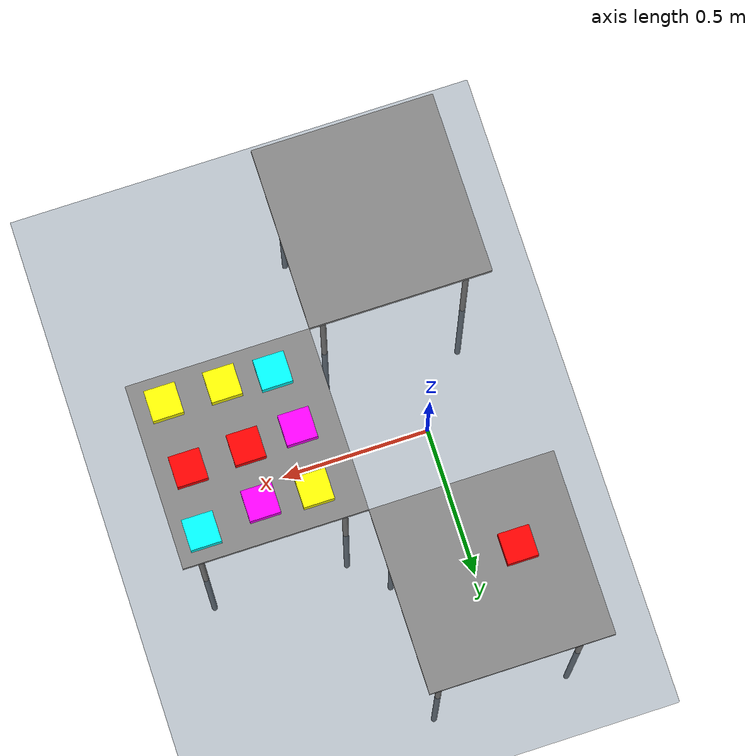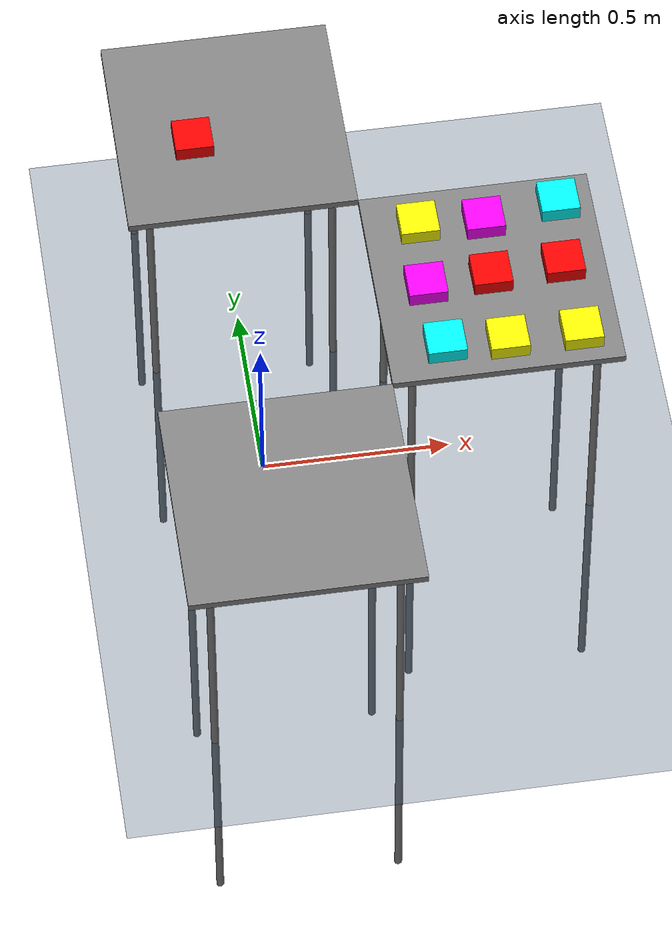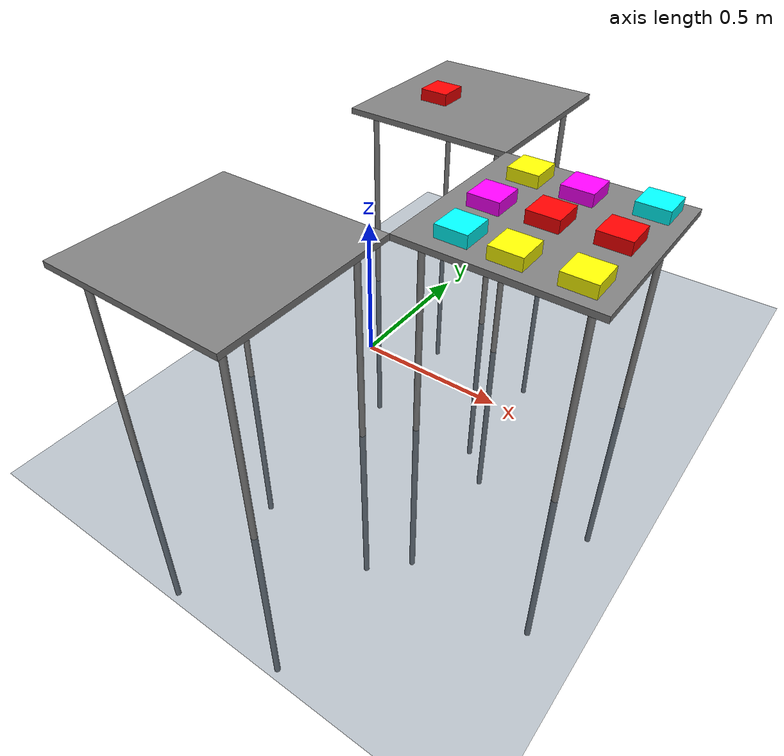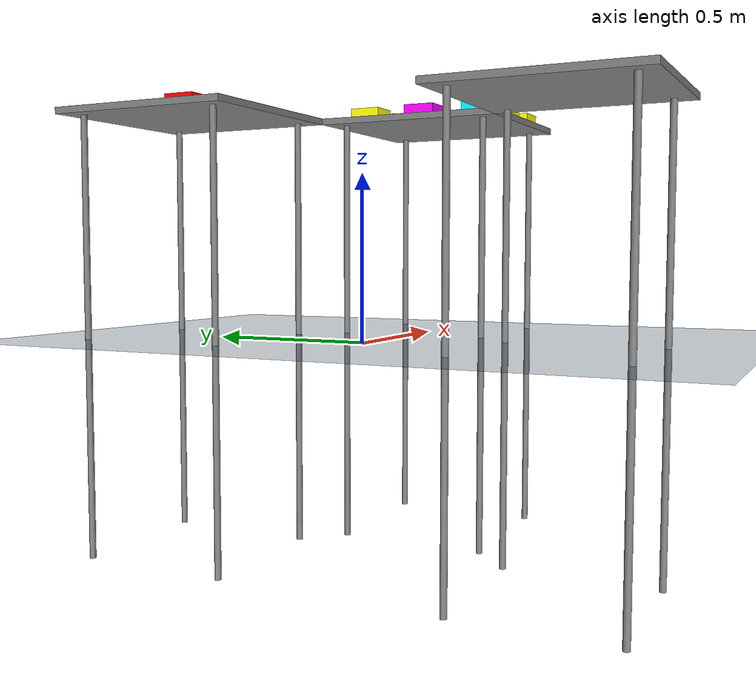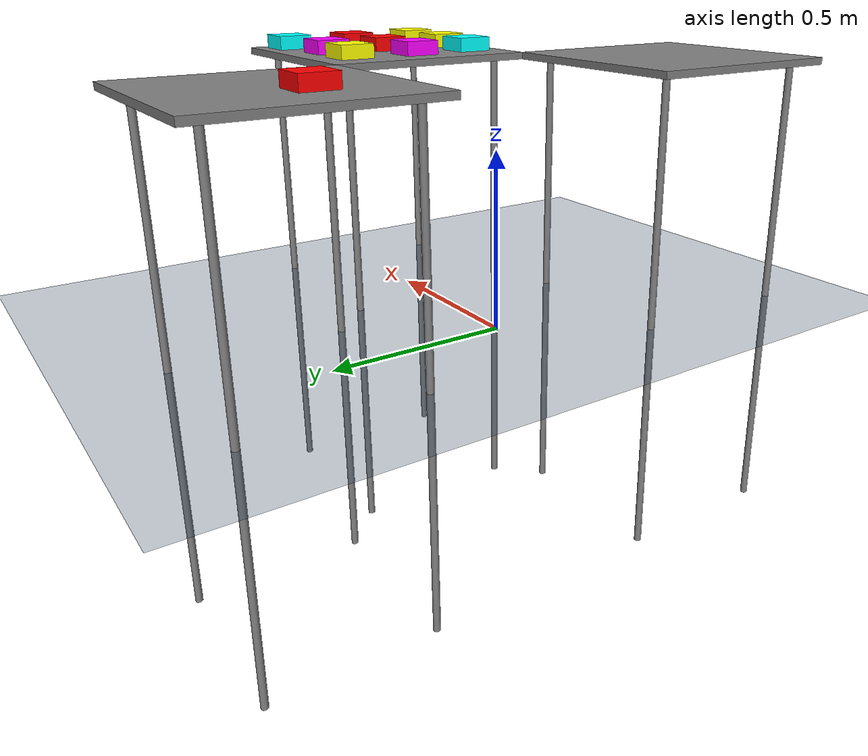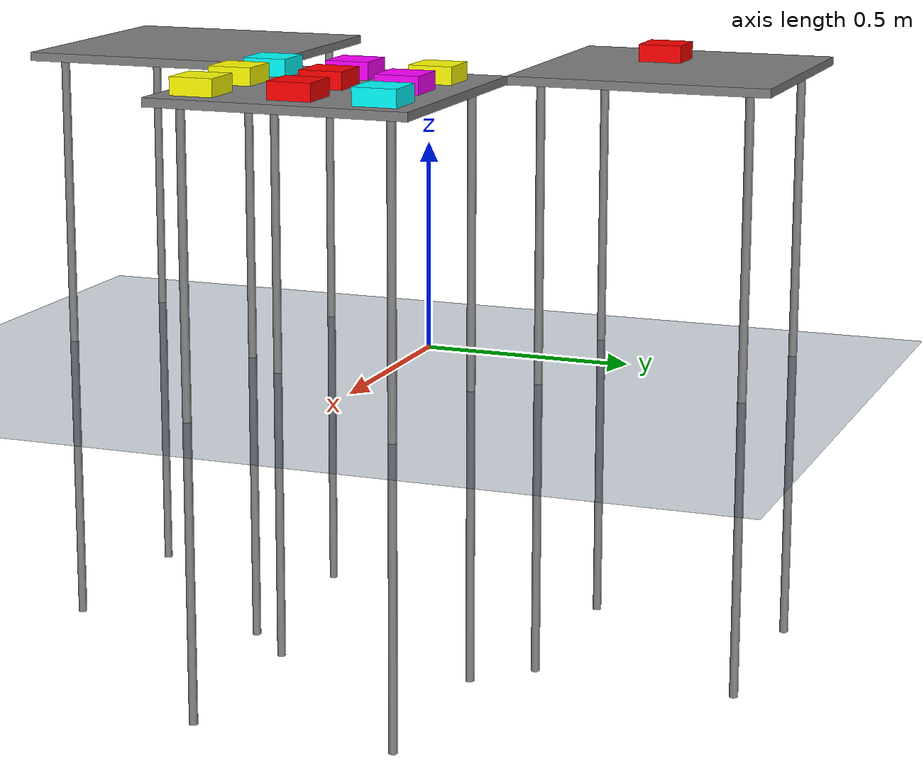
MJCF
<mujoco model="tableworld">
    <compiler eulerseq="XYZ"/>
    <statistic center="0.3 0 0.4" extent="0.8"/>

    <visual>
        <headlight diffuse="0.6 0.6 0.6" ambient="0.1 0.1 0.1" specular="0 0 0"/>
        <rgba haze="0.15 0.25 0.35 1"/>
        <global azimuth="120" elevation="-20"/>
    </visual>

    <asset>
        <texture type="skybox" builtin="gradient" rgb1="0.3 0.5 0.7" rgb2="0 0 0" width="512" height="3072"/>
        <texture type="2d" name="groundplane" builtin="checker" mark="edge" rgb1="0.2 0.3 0.4" rgb2="0.1 0.2 0.3"
                 markrgb="0.8 0.8 0.8" width="300" height="300"/>
        <material name="groundplane" texture="groundplane" texuniform="true" texrepeat="5 5" reflectance="0.2"/>

    </asset>

    <worldbody>
        <light pos="0 0 1.5" dir="0 0 -1" directional="true"/>
        <geom name="floor" pos="0.0 0.0 0.0" size="0 0 0.05" type="plane" material="groundplane"/>

        <body name="table_left" pos="0.0 -0.6 0">
            <geom name="table_left_top" type="box" size=".30 .30 .01" pos="0 0 .7"/>
            <geom name="table_left_leg_1" type="cylinder" size=".01 .7" pos=".24 -.24 -.0" euler="0 0 0"/>
            <geom name="table_left_leg_2" type="cylinder" size=".01 .7" pos=".24 .24 -.0" euler="0 0 0"/>
            <geom name="table_left_leg_3" type="cylinder" size=".01 .7" pos="-.24 -.24 -.0" euler="0 0 0"/>
            <geom name="table_left_leg_4" type="cylinder" size=".01 .7" pos="-.24 .24 -.0" euler="0 0 0"/>
        </body>

        <body name="table_right" pos="0 0.6 0">
            <geom name="table_right_top" type="box" size=".30 .30 .01" pos="0 0 .7"/>
            <geom name="table_right_leg_1" type="cylinder" size=".01 .7" pos=".24 -.24 -.0" euler="0 0 0"/>
            <geom name="table_right_leg_2" type="cylinder" size=".01 .7" pos=".24 .24 -.0" euler="0 0 0"/>
            <geom name="table_right_leg_3" type="cylinder" size=".01 .7" pos="-.24 -.24 -.0" euler="0 0 0"/>
            <geom name="table_right_leg_4" type="cylinder" size=".01 .7" pos="-.24 .24 -.0" euler="0 0 0"/>
        </body>

        <body name="table_front" pos="0.6 0 0">
            <geom name="table_front_top" type="box" size=".30 .30 .01" pos="0 0 .7"/>
            <geom name="table_front_leg_1" type="cylinder" size=".01 .7" pos=".24 -.24 -.0" euler="0 0 0"/>
            <geom name="table_front_leg_2" type="cylinder" size=".01 .7" pos=".24 .24 -.0" euler="0 0 0"/>
            <geom name="table_front_leg_3" type="cylinder" size=".01 .7" pos="-.24 -.24 -.0" euler="0 0 0"/>
            <geom name="table_front_leg_4" type="cylinder" size=".01 .7" pos="-.24 .24 -.0" euler="0 0 0"/>
        </body>

<!--        table right:     -->
        <body name="block 1" pos="-0.1 0.55 0.73">
            <freejoint name="block 1" />
            <geom name="block 1" type="box" size=".05 .05 .02" rgba="1 0 0 1"/>
        </body>

        <body name="block 2" pos="0.8 -0.21 0.73">
            <freejoint name="block 2"/>
            <geom name="block 2" type="box" size=".05 .05 .02" rgba="1 1 0 1"/>
        </body>

        <body name="block 3" pos="0.81 0.21 0.73">
            <freejoint name="block 3"/>
            <geom name="block 3" type="box" size=".05 .05 .02" rgba="0 1 1 1"/>
        </body>

        <body name="block 4" pos="0.61 0.18 0.73">
            <freejoint name="block 4"/>
            <geom name="block 4" type="box" size=".05 .05 .02" rgba="1 0 1 1"/>
        </body>

<!--        table left   -->

        <body name="block 5" pos="0.79 0.01 0.73">
            <freejoint name="block 5"/>
            <geom name="block 5" type="box" size=".05 .05 .02" rgba="1 0 0 1"/>
        </body>

        <body name="block 6" pos="0.44 0.19 0.73">
            <freejoint name="block 6"/>
            <geom name="block 6" type="box" size=".05 .05 .02" rgba="1 1 0 1"/>
        </body>

        <body name="block 7" pos="0.45 -0.2 0.73">
            <freejoint name="block 7"/>
            <geom name="block 7" type="box" size=".05 .05 .02" rgba="0 1 1 1"/>
        </body>

        <body name="block 8" pos="0.43 -0.01 0.73">
            <freejoint name="block 8"/>
            <geom name="block 8" type="box" size=".05 .05 .02" rgba="1 0 1 1"/>
        </body>

<!--        table front   -->
        <body name="block 9" pos="0.6 0 0.73">
            <freejoint name="block 9"/>
            <geom name="block 9" type="box" size=".05 .05 .02" rgba="1 0 0 1"/>
        </body>

        <body name="block 10" pos="0.61 -0.21 0.73">
            <freejoint name="block 10"/>
            <geom name="block 10" type="box" size=".05 .05 .02" rgba="1 1 0 1"/>
        </body>

        <camera name="top-right" pos="2.5 1.2 2.5" euler="1 0 2"/>

    </worldbody>

</mujoco>
